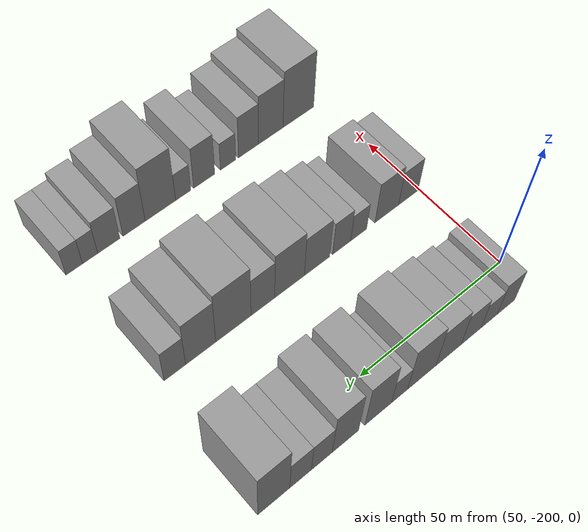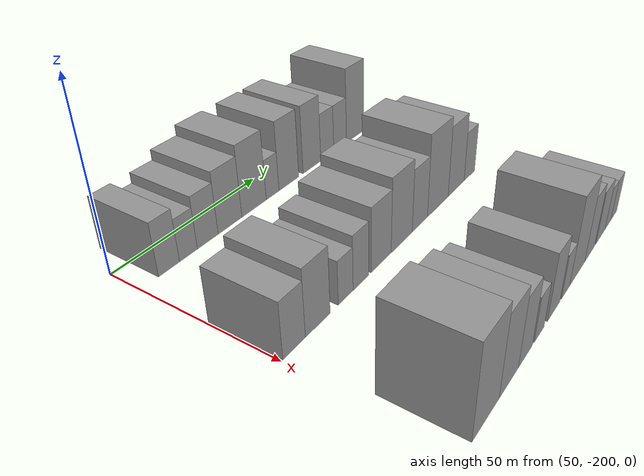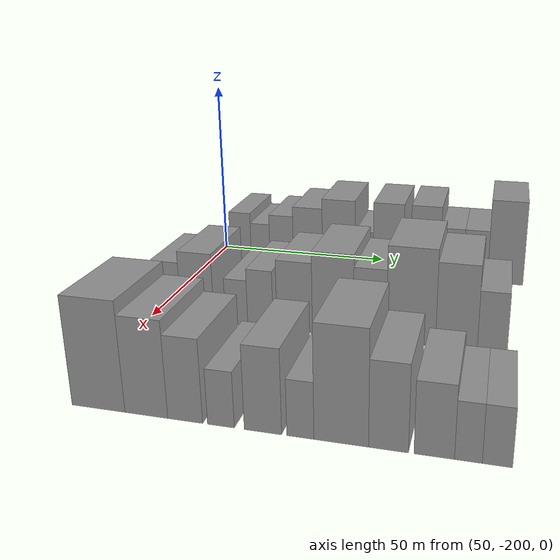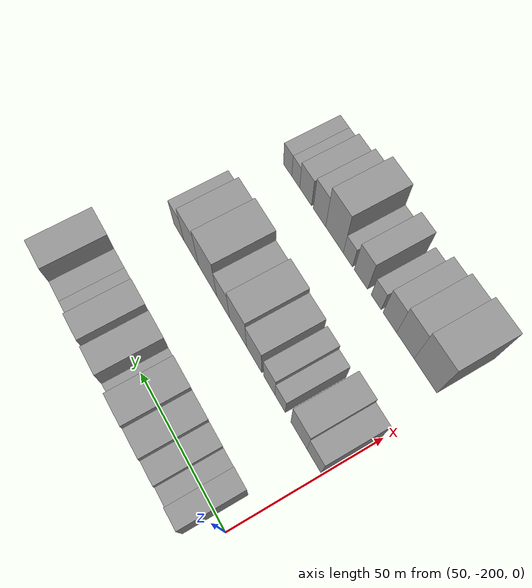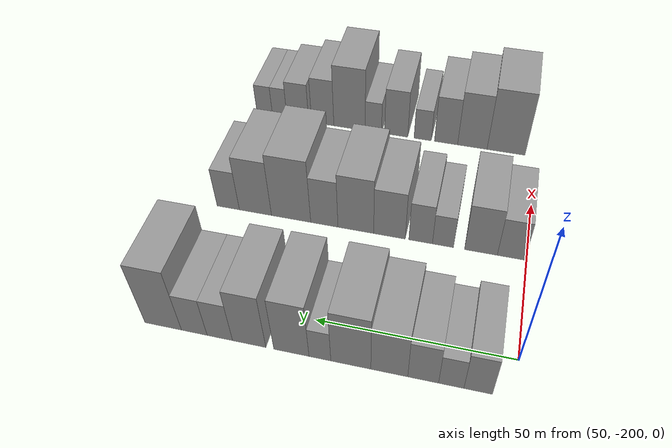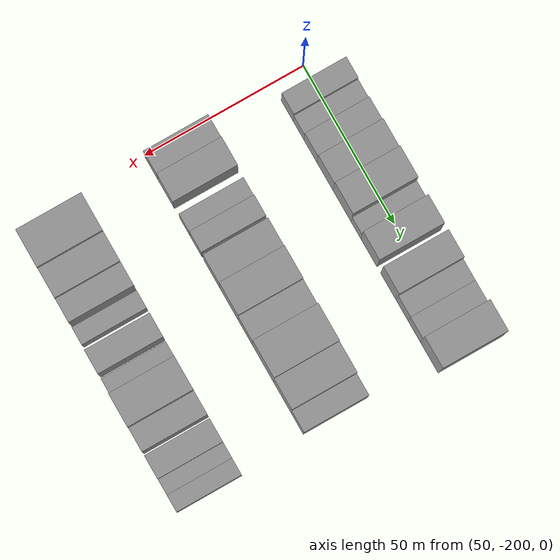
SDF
<sdf version="1.6">
 <world name="default">
  <model name="building_22">
   <static>1</static>
   <pose>50.0000 -191.3809 0 0.000000 0.000000 0.000000</pose>
   <link name="link">
    <pose>0 0 7.50 0 0 0</pose>
    <collision name="collision"><geometry><box><size>20.0000 6.5743 15.0000</size></box></geometry></collision>
    <visual name="visual">
     <cast_shadows>0</cast_shadows>
     <geometry><box><size>20.0000 6.5743 15.0000</size></box></geometry>
     <material>
      <script>
       <uri>model://grey_wall/materials/scripts</uri>
       <uri>model://grey_wall/materials/textures</uri>
       <name>vrc/grey_wall</name>
      </script>
     </material>
    </visual>
   </link>
  </model>
  <model name="building_23">
   <static>1</static>
   <pose>50.0000 -185.1483 0 0.000000 0.000000 0.000000</pose>
   <link name="link">
    <pose>0 0 6.00 0 0 0</pose>
    <collision name="collision"><geometry><box><size>20.0000 5.8909 12.0000</size></box></geometry></collision>
    <visual name="visual">
     <cast_shadows>0</cast_shadows>
     <geometry><box><size>20.0000 5.8909 12.0000</size></box></geometry>
     <material>
      <script>
       <uri>model://grey_wall/materials/scripts</uri>
       <uri>model://grey_wall/materials/textures</uri>
       <name>vrc/grey_wall</name>
      </script>
     </material>
    </visual>
   </link>
  </model>
  <model name="building_24">
   <static>1</static>
   <pose>50.0000 -178.5799 0 0.000000 0.000000 0.000000</pose>
   <link name="link">
    <pose>0 0 7.50 0 0 0</pose>
    <collision name="collision"><geometry><box><size>20.0000 7.2459 15.0000</size></box></geometry></collision>
    <visual name="visual">
     <cast_shadows>0</cast_shadows>
     <geometry><box><size>20.0000 7.2459 15.0000</size></box></geometry>
     <material>
      <script>
       <uri>model://grey_wall/materials/scripts</uri>
       <uri>model://grey_wall/materials/textures</uri>
       <name>vrc/grey_wall</name>
      </script>
     </material>
    </visual>
   </link>
  </model>
  <model name="building_25">
   <static>1</static>
   <pose>50.0000 -170.5473 0 0.000000 0.000000 0.000000</pose>
   <link name="link">
    <pose>0 0 9.00 0 0 0</pose>
    <collision name="collision"><geometry><box><size>20.0000 8.8192 18.0000</size></box></geometry></collision>
    <visual name="visual">
     <cast_shadows>0</cast_shadows>
     <geometry><box><size>20.0000 8.8192 18.0000</size></box></geometry>
     <material>
      <script>
       <uri>model://grey_wall/materials/scripts</uri>
       <uri>model://grey_wall/materials/textures</uri>
       <name>vrc/grey_wall</name>
      </script>
     </material>
    </visual>
   </link>
  </model>
  <model name="building_26">
   <static>1</static>
   <pose>50.0000 -161.2789 0 0.000000 0.000000 0.000000</pose>
   <link name="link">
    <pose>0 0 10.50 0 0 0</pose>
    <collision name="collision"><geometry><box><size>20.0000 9.7175 21.0000</size></box></geometry></collision>
    <visual name="visual">
     <cast_shadows>0</cast_shadows>
     <geometry><box><size>20.0000 9.7175 21.0000</size></box></geometry>
     <material>
      <script>
       <uri>model://grey_wall/materials/scripts</uri>
       <uri>model://grey_wall/materials/textures</uri>
       <name>vrc/grey_wall</name>
      </script>
     </material>
    </visual>
   </link>
  </model>
  <model name="building_27">
   <static>1</static>
   <pose>50.0000 -153.7344 0 0.000000 0.000000 0.000000</pose>
   <link name="link">
    <pose>0 0 6.00 0 0 0</pose>
    <collision name="collision"><geometry><box><size>20.0000 5.3715 12.0000</size></box></geometry></collision>
    <visual name="visual">
     <cast_shadows>0</cast_shadows>
     <geometry><box><size>20.0000 5.3715 12.0000</size></box></geometry>
     <material>
      <script>
       <uri>model://grey_wall/materials/scripts</uri>
       <uri>model://grey_wall/materials/textures</uri>
       <name>vrc/grey_wall</name>
      </script>
     </material>
    </visual>
   </link>
  </model>
  <model name="building_28">
   <static>1</static>
   <pose>50.0000 -146.6572 0 0.000000 0.000000 0.000000</pose>
   <link name="link">
    <pose>0 0 10.50 0 0 0</pose>
    <collision name="collision"><geometry><box><size>20.0000 8.7830 21.0000</size></box></geometry></collision>
    <visual name="visual">
     <cast_shadows>0</cast_shadows>
     <geometry><box><size>20.0000 8.7830 21.0000</size></box></geometry>
     <material>
      <script>
       <uri>model://grey_wall/materials/scripts</uri>
       <uri>model://grey_wall/materials/textures</uri>
       <name>vrc/grey_wall</name>
      </script>
     </material>
    </visual>
   </link>
  </model>
  <model name="building_29">
   <static>1</static>
   <pose>50.0000 -136.0316 0 0.000000 0.000000 0.000000</pose>
   <link name="link">
    <pose>0 0 10.50 0 0 0</pose>
    <collision name="collision"><geometry><box><size>20.0000 8.4683 21.0000</size></box></geometry></collision>
    <visual name="visual">
     <cast_shadows>0</cast_shadows>
     <geometry><box><size>20.0000 8.4683 21.0000</size></box></geometry>
     <material>
      <script>
       <uri>model://grey_wall/materials/scripts</uri>
       <uri>model://grey_wall/materials/textures</uri>
       <name>vrc/grey_wall</name>
      </script>
     </material>
    </visual>
   </link>
  </model>
  <model name="building_30">
   <static>1</static>
   <pose>50.0000 -128.5220 0 0.000000 0.000000 0.000000</pose>
   <link name="link">
    <pose>0 0 7.50 0 0 0</pose>
    <collision name="collision"><geometry><box><size>20.0000 6.5510 15.0000</size></box></geometry></collision>
    <visual name="visual">
     <cast_shadows>0</cast_shadows>
     <geometry><box><size>20.0000 6.5510 15.0000</size></box></geometry>
     <material>
      <script>
       <uri>model://grey_wall/materials/scripts</uri>
       <uri>model://grey_wall/materials/textures</uri>
       <name>vrc/grey_wall</name>
      </script>
     </material>
    </visual>
   </link>
  </model>
  <model name="building_31">
   <static>1</static>
   <pose>50.0000 -121.9034 0 0.000000 0.000000 0.000000</pose>
   <link name="link">
    <pose>0 0 7.50 0 0 0</pose>
    <collision name="collision"><geometry><box><size>20.0000 6.6861 15.0000</size></box></geometry></collision>
    <visual name="visual">
     <cast_shadows>0</cast_shadows>
     <geometry><box><size>20.0000 6.6861 15.0000</size></box></geometry>
     <material>
      <script>
       <uri>model://grey_wall/materials/scripts</uri>
       <uri>model://grey_wall/materials/textures</uri>
       <name>vrc/grey_wall</name>
      </script>
     </material>
    </visual>
   </link>
  </model>
  <model name="building_32">
   <static>1</static>
   <pose>50.0000 -113.7323 0 0.000000 0.000000 0.000000</pose>
   <link name="link">
    <pose>0 0 12.00 0 0 0</pose>
    <collision name="collision"><geometry><box><size>20.0000 9.6560 24.0000</size></box></geometry></collision>
    <visual name="visual">
     <cast_shadows>0</cast_shadows>
     <geometry><box><size>20.0000 9.6560 24.0000</size></box></geometry>
     <material>
      <script>
       <uri>model://grey_wall/materials/scripts</uri>
       <uri>model://grey_wall/materials/textures</uri>
       <name>vrc/grey_wall</name>
      </script>
     </material>
    </visual>
   </link>
  </model>
  <model name="building_102">
   <static>1</static>
   <pose>90.0000 -195.8029 0 0.000000 0.000000 0.000000</pose>
   <link name="link">
    <pose>0 0 7.50 0 0 0</pose>
    <collision name="collision"><geometry><box><size>20.0000 7.3744 15.0000</size></box></geometry></collision>
    <visual name="visual">
     <cast_shadows>0</cast_shadows>
     <geometry><box><size>20.0000 7.3744 15.0000</size></box></geometry>
     <material>
      <script>
       <uri>model://grey_wall/materials/scripts</uri>
       <uri>model://grey_wall/materials/textures</uri>
       <name>vrc/grey_wall</name>
      </script>
     </material>
    </visual>
   </link>
  </model>
  <model name="building_103">
   <static>1</static>
   <pose>90.0000 -187.7217 0 0.000000 0.000000 0.000000</pose>
   <link name="link">
    <pose>0 0 9.00 0 0 0</pose>
    <collision name="collision"><geometry><box><size>20.0000 8.7880 18.0000</size></box></geometry></collision>
    <visual name="visual">
     <cast_shadows>0</cast_shadows>
     <geometry><box><size>20.0000 8.7880 18.0000</size></box></geometry>
     <material>
      <script>
       <uri>model://grey_wall/materials/scripts</uri>
       <uri>model://grey_wall/materials/textures</uri>
       <name>vrc/grey_wall</name>
      </script>
     </material>
    </visual>
   </link>
  </model>
  <model name="building_104">
   <static>1</static>
   <pose>90.0000 -177.4430 0 0.000000 0.000000 0.000000</pose>
   <link name="link">
    <pose>0 0 6.00 0 0 0</pose>
    <collision name="collision"><geometry><box><size>20.0000 5.7694 12.0000</size></box></geometry></collision>
    <visual name="visual">
     <cast_shadows>0</cast_shadows>
     <geometry><box><size>20.0000 5.7694 12.0000</size></box></geometry>
     <material>
      <script>
       <uri>model://grey_wall/materials/scripts</uri>
       <uri>model://grey_wall/materials/textures</uri>
       <name>vrc/grey_wall</name>
      </script>
     </material>
    </visual>
   </link>
  </model>
  <model name="building_105">
   <static>1</static>
   <pose>90.0000 -171.3105 0 0.000000 0.000000 0.000000</pose>
   <link name="link">
    <pose>0 0 7.50 0 0 0</pose>
    <collision name="collision"><geometry><box><size>20.0000 6.4957 15.0000</size></box></geometry></collision>
    <visual name="visual">
     <cast_shadows>0</cast_shadows>
     <geometry><box><size>20.0000 6.4957 15.0000</size></box></geometry>
     <material>
      <script>
       <uri>model://grey_wall/materials/scripts</uri>
       <uri>model://grey_wall/materials/textures</uri>
       <name>vrc/grey_wall</name>
      </script>
     </material>
    </visual>
   </link>
  </model>
  <model name="building_106">
   <static>1</static>
   <pose>90.0000 -162.6457 0 0.000000 0.000000 0.000000</pose>
   <link name="link">
    <pose>0 0 9.00 0 0 0</pose>
    <collision name="collision"><geometry><box><size>20.0000 8.8340 18.0000</size></box></geometry></collision>
    <visual name="visual">
     <cast_shadows>0</cast_shadows>
     <geometry><box><size>20.0000 8.8340 18.0000</size></box></geometry>
     <material>
      <script>
       <uri>model://grey_wall/materials/scripts</uri>
       <uri>model://grey_wall/materials/textures</uri>
       <name>vrc/grey_wall</name>
      </script>
     </material>
    </visual>
   </link>
  </model>
  <model name="building_107">
   <static>1</static>
   <pose>90.0000 -153.1678 0 0.000000 0.000000 0.000000</pose>
   <link name="link">
    <pose>0 0 10.50 0 0 0</pose>
    <collision name="collision"><geometry><box><size>20.0000 10.1218 21.0000</size></box></geometry></collision>
    <visual name="visual">
     <cast_shadows>0</cast_shadows>
     <geometry><box><size>20.0000 10.1218 21.0000</size></box></geometry>
     <material>
      <script>
       <uri>model://grey_wall/materials/scripts</uri>
       <uri>model://grey_wall/materials/textures</uri>
       <name>vrc/grey_wall</name>
      </script>
     </material>
    </visual>
   </link>
  </model>
  <model name="building_108">
   <static>1</static>
   <pose>90.0000 -144.1938 0 0.000000 0.000000 0.000000</pose>
   <link name="link">
    <pose>0 0 9.00 0 0 0</pose>
    <collision name="collision"><geometry><box><size>20.0000 7.8263 18.0000</size></box></geometry></collision>
    <visual name="visual">
     <cast_shadows>0</cast_shadows>
     <geometry><box><size>20.0000 7.8263 18.0000</size></box></geometry>
     <material>
      <script>
       <uri>model://grey_wall/materials/scripts</uri>
       <uri>model://grey_wall/materials/textures</uri>
       <name>vrc/grey_wall</name>
      </script>
     </material>
    </visual>
   </link>
  </model>
  <model name="building_109">
   <static>1</static>
   <pose>90.0000 -134.5442 0 0.000000 0.000000 0.000000</pose>
   <link name="link">
    <pose>0 0 12.00 0 0 0</pose>
    <collision name="collision"><geometry><box><size>20.0000 11.4729 24.0000</size></box></geometry></collision>
    <visual name="visual">
     <cast_shadows>0</cast_shadows>
     <geometry><box><size>20.0000 11.4729 24.0000</size></box></geometry>
     <material>
      <script>
       <uri>model://grey_wall/materials/scripts</uri>
       <uri>model://grey_wall/materials/textures</uri>
       <name>vrc/grey_wall</name>
      </script>
     </material>
    </visual>
   </link>
  </model>
  <model name="building_110">
   <static>1</static>
   <pose>90.0000 -124.0422 0 0.000000 0.000000 0.000000</pose>
   <link name="link">
    <pose>0 0 10.50 0 0 0</pose>
    <collision name="collision"><geometry><box><size>20.0000 9.5312 21.0000</size></box></geometry></collision>
    <visual name="visual">
     <cast_shadows>0</cast_shadows>
     <geometry><box><size>20.0000 9.5312 21.0000</size></box></geometry>
     <material>
      <script>
       <uri>model://grey_wall/materials/scripts</uri>
       <uri>model://grey_wall/materials/textures</uri>
       <name>vrc/grey_wall</name>
      </script>
     </material>
    </visual>
   </link>
  </model>
  <model name="building_111">
   <static>1</static>
   <pose>90.0000 -115.9387 0 0.000000 0.000000 0.000000</pose>
   <link name="link">
    <pose>0 0 7.50 0 0 0</pose>
    <collision name="collision"><geometry><box><size>20.0000 6.6757 15.0000</size></box></geometry></collision>
    <visual name="visual">
     <cast_shadows>0</cast_shadows>
     <geometry><box><size>20.0000 6.6757 15.0000</size></box></geometry>
     <material>
      <script>
       <uri>model://grey_wall/materials/scripts</uri>
       <uri>model://grey_wall/materials/textures</uri>
       <name>vrc/grey_wall</name>
      </script>
     </material>
    </visual>
   </link>
  </model>
  <model name="building_189">
   <static>1</static>
   <pose>130.0000 -191.1418 0 0.000000 0.000000 0.000000</pose>
   <link name="link">
    <pose>0 0 12.00 0 0 0</pose>
    <collision name="collision"><geometry><box><size>20.0000 11.5854 24.0000</size></box></geometry></collision>
    <visual name="visual">
     <cast_shadows>0</cast_shadows>
     <geometry><box><size>20.0000 11.5854 24.0000</size></box></geometry>
     <material>
      <script>
       <uri>model://grey_wall/materials/scripts</uri>
       <uri>model://grey_wall/materials/textures</uri>
       <name>vrc/grey_wall</name>
      </script>
     </material>
    </visual>
   </link>
  </model>
  <model name="building_190">
   <static>1</static>
   <pose>130.0000 -180.7968 0 0.000000 0.000000 0.000000</pose>
   <link name="link">
    <pose>0 0 10.50 0 0 0</pose>
    <collision name="collision"><geometry><box><size>20.0000 9.1045 21.0000</size></box></geometry></collision>
    <visual name="visual">
     <cast_shadows>0</cast_shadows>
     <geometry><box><size>20.0000 9.1045 21.0000</size></box></geometry>
     <material>
      <script>
       <uri>model://grey_wall/materials/scripts</uri>
       <uri>model://grey_wall/materials/textures</uri>
       <name>vrc/grey_wall</name>
      </script>
     </material>
    </visual>
   </link>
  </model>
  <model name="building_191">
   <static>1</static>
   <pose>130.0000 -172.6298 0 0.000000 0.000000 0.000000</pose>
   <link name="link">
    <pose>0 0 9.00 0 0 0</pose>
    <collision name="collision"><geometry><box><size>20.0000 7.2295 18.0000</size></box></geometry></collision>
    <visual name="visual">
     <cast_shadows>0</cast_shadows>
     <geometry><box><size>20.0000 7.2295 18.0000</size></box></geometry>
     <material>
      <script>
       <uri>model://grey_wall/materials/scripts</uri>
       <uri>model://grey_wall/materials/textures</uri>
       <name>vrc/grey_wall</name>
      </script>
     </material>
    </visual>
   </link>
  </model>
  <model name="building_192">
   <static>1</static>
   <pose>130.0000 -165.2954 0 0.000000 0.000000 0.000000</pose>
   <link name="link">
    <pose>0 0 6.00 0 0 0</pose>
    <collision name="collision"><geometry><box><size>20.0000 5.4393 12.0000</size></box></geometry></collision>
    <visual name="visual">
     <cast_shadows>0</cast_shadows>
     <geometry><box><size>20.0000 5.4393 12.0000</size></box></geometry>
     <material>
      <script>
       <uri>model://grey_wall/materials/scripts</uri>
       <uri>model://grey_wall/materials/textures</uri>
       <name>vrc/grey_wall</name>
      </script>
     </material>
    </visual>
   </link>
  </model>
  <model name="building_193">
   <static>1</static>
   <pose>130.0000 -156.8866 0 0.000000 0.000000 0.000000</pose>
   <link name="link">
    <pose>0 0 9.00 0 0 0</pose>
    <collision name="collision"><geometry><box><size>20.0000 7.3783 18.0000</size></box></geometry></collision>
    <visual name="visual">
     <cast_shadows>0</cast_shadows>
     <geometry><box><size>20.0000 7.3783 18.0000</size></box></geometry>
     <material>
      <script>
       <uri>model://grey_wall/materials/scripts</uri>
       <uri>model://grey_wall/materials/textures</uri>
       <name>vrc/grey_wall</name>
      </script>
     </material>
    </visual>
   </link>
  </model>
  <model name="building_194">
   <static>1</static>
   <pose>130.0000 -149.5803 0 0.000000 0.000000 0.000000</pose>
   <link name="link">
    <pose>0 0 6.00 0 0 0</pose>
    <collision name="collision"><geometry><box><size>20.0000 5.2341 12.0000</size></box></geometry></collision>
    <visual name="visual">
     <cast_shadows>0</cast_shadows>
     <geometry><box><size>20.0000 5.2341 12.0000</size></box></geometry>
     <material>
      <script>
       <uri>model://grey_wall/materials/scripts</uri>
       <uri>model://grey_wall/materials/textures</uri>
       <name>vrc/grey_wall</name>
      </script>
     </material>
    </visual>
   </link>
  </model>
  <model name="building_195">
   <static>1</static>
   <pose>130.0000 -141.8289 0 0.000000 0.000000 0.000000</pose>
   <link name="link">
    <pose>0 0 12.00 0 0 0</pose>
    <collision name="collision"><geometry><box><size>20.0000 10.2688 24.0000</size></box></geometry></collision>
    <visual name="visual">
     <cast_shadows>0</cast_shadows>
     <geometry><box><size>20.0000 10.2688 24.0000</size></box></geometry>
     <material>
      <script>
       <uri>model://grey_wall/materials/scripts</uri>
       <uri>model://grey_wall/materials/textures</uri>
       <name>vrc/grey_wall</name>
      </script>
     </material>
    </visual>
   </link>
  </model>
  <model name="building_196">
   <static>1</static>
   <pose>130.0000 -133.0376 0 0.000000 0.000000 0.000000</pose>
   <link name="link">
    <pose>0 0 9.00 0 0 0</pose>
    <collision name="collision"><geometry><box><size>20.0000 7.3137 18.0000</size></box></geometry></collision>
    <visual name="visual">
     <cast_shadows>0</cast_shadows>
     <geometry><box><size>20.0000 7.3137 18.0000</size></box></geometry>
     <material>
      <script>
       <uri>model://grey_wall/materials/scripts</uri>
       <uri>model://grey_wall/materials/textures</uri>
       <name>vrc/grey_wall</name>
      </script>
     </material>
    </visual>
   </link>
  </model>
  <model name="building_197">
   <static>1</static>
   <pose>130.0000 -124.7726 0 0.000000 0.000000 0.000000</pose>
   <link name="link">
    <pose>0 0 7.50 0 0 0</pose>
    <collision name="collision"><geometry><box><size>20.0000 7.2163 15.0000</size></box></geometry></collision>
    <visual name="visual">
     <cast_shadows>0</cast_shadows>
     <geometry><box><size>20.0000 7.2163 15.0000</size></box></geometry>
     <material>
      <script>
       <uri>model://grey_wall/materials/scripts</uri>
       <uri>model://grey_wall/materials/textures</uri>
       <name>vrc/grey_wall</name>
      </script>
     </material>
    </visual>
   </link>
  </model>
  <model name="building_198">
   <static>1</static>
   <pose>130.0000 -118.7449 0 0.000000 0.000000 0.000000</pose>
   <link name="link">
    <pose>0 0 6.00 0 0 0</pose>
    <collision name="collision"><geometry><box><size>20.0000 4.8393 12.0000</size></box></geometry></collision>
    <visual name="visual">
     <cast_shadows>0</cast_shadows>
     <geometry><box><size>20.0000 4.8393 12.0000</size></box></geometry>
     <material>
      <script>
       <uri>model://grey_wall/materials/scripts</uri>
       <uri>model://grey_wall/materials/textures</uri>
       <name>vrc/grey_wall</name>
      </script>
     </material>
    </visual>
   </link>
  </model>
  <model name="building_199">
   <static>1</static>
   <pose>130.0000 -113.7161 0 0.000000 0.000000 0.000000</pose>
   <link name="link">
    <pose>0 0 6.00 0 0 0</pose>
    <collision name="collision"><geometry><box><size>20.0000 5.2183 12.0000</size></box></geometry></collision>
    <visual name="visual">
     <cast_shadows>0</cast_shadows>
     <geometry><box><size>20.0000 5.2183 12.0000</size></box></geometry>
     <material>
      <script>
       <uri>model://grey_wall/materials/scripts</uri>
       <uri>model://grey_wall/materials/textures</uri>
       <name>vrc/grey_wall</name>
      </script>
     </material>
    </visual>
   </link>
  </model>
 </world>
</sdf>
